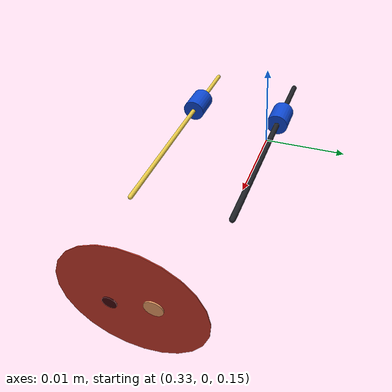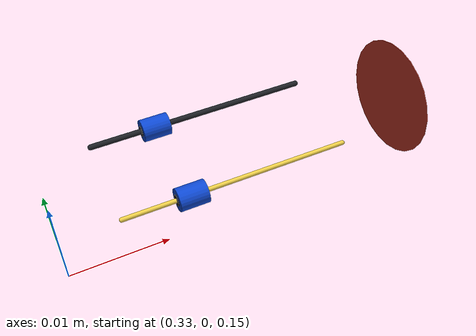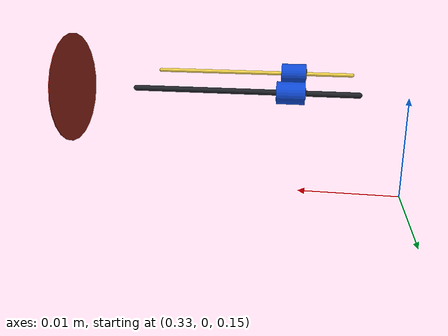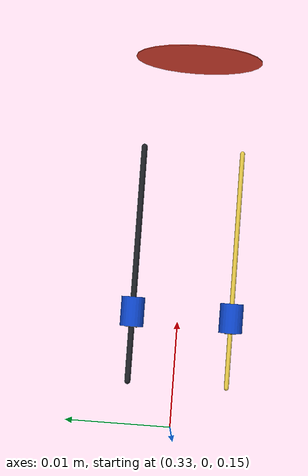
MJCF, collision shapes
<mujoco model="single_arm_ophthalmic_g95_anatomy_visual">
  <compiler angle="radian" coordinate="local"/>
  <option timestep="0.002" gravity="0 0 0" integrator="implicitfast"/>

  <visual>
    <global offwidth="960" offheight="720"/>
    <quality shadowsize="4096"/>
    <map znear="0.002" zfar="1.0"/>
    <headlight ambient="0.10 0.10 0.10" diffuse="0.20 0.20 0.20" specular="0.05 0.05 0.05"/>
  </visual>

  <asset>
    <mesh name="sclera_shell_mesh" file="assets/g95_eye/sclera_shell.obj"/>
    <mesh name="posterior_retina_mesh" file="assets/g95_eye/posterior_retina.obj"/>
    <mesh name="retinal_vessels_mesh" file="assets/g95_eye/retinal_vessels.obj"/>
    <mesh name="iris_annulus_mesh" file="assets/g95_eye/iris_annulus.obj"/>
    <material name="sclera_translucent" rgba="0.94 0.91 0.84 0.82"/>
    <material name="cornea_transparent" rgba="0.60 0.90 1.00 0.07"/>
    <material name="lens_transparent" rgba="0.90 0.96 0.83 0.035"/>
    <material name="iris_green" rgba="0.08 0.34 0.27 1"/>
    <material name="retina_red" rgba="0.78 0.22 0.16 1" emission="0.35"/>
    <material name="vessel_red" rgba="0.36 0.004 0.008 1" emission="0.45"/>
    <material name="optic_disc" rgba="0.93 0.62 0.40 1" emission="0.25"/>
    <material name="macula" rgba="0.25 0.025 0.035 1" emission="0.30"/>
    <material name="trocar_blue" rgba="0.05 0.28 0.82 1"/>
    <material name="metal" rgba="0.72 0.75 0.77 1"/>
    <material name="needle" rgba="0.12 0.13 0.15 1"/>
    <material name="fiber" rgba="0.92 0.80 0.28 1"/>
  </asset>

  <worldbody>
    <light name="room_key" pos="0.27 -0.20 0.30" dir="0.4 0.3 -1" diffuse="0.45 0.45 0.43"/>
    <light name="room_fill" pos="0.28 0.16 0.22" dir="0.5 -0.4 -0.2" diffuse="0.20 0.22 0.24"/>

    <!-- Visual/anatomical scaffold only. The frozen G28-G94 contact scene remains unchanged. -->
    <body name="eye_anatomy" pos="0.352 0 0.160">
      <camera name="retina_inspection_view" mode="fixed" pos="-0.005 0 0" xyaxes="0 -1 0 0 0 1" fovy="48"/>
      <!-- Corneal/lens transparency is deferred to camera post-processing;
           stacked transparent geoms otherwise hide the posterior pole. -->
      <!-- Iris is composited in the final pupil-camera post-processing pass;
           MuJoCo convexifies holed meshes and would otherwise close the pupil. -->
      <geom name="posterior_retina_visual" type="mesh" mesh="posterior_retina_mesh" material="retina_red" contype="0" conaffinity="0"/>
      <geom name="retinal_vessels_visual" type="mesh" mesh="retinal_vessels_mesh" material="vessel_red" contype="0" conaffinity="0"/>
      <geom name="pupil_fundus_projection" type="cylinder" pos="0.01105 0 0" euler="0 1.57079632679 0" size="0.0055 0.000035" material="retina_red" contype="0" conaffinity="0"/>
      <geom name="optic_disc_visual" type="cylinder" pos="0.01118 0.00165 0.00035" euler="0 1.57079632679 0" size="0.00072 0.00005" material="optic_disc" contype="0" conaffinity="0"/>
      <geom name="macula_visual" type="cylinder" pos="0.01130 -0.00155 -0.00015" euler="0 1.57079632679 0" size="0.00055 0.000035" material="macula" contype="0" conaffinity="0"/>

      <!-- Frozen single-arm dimensions: 2.0 mm OD, 1.0 mm ID, 2.5 mm visible length. -->
      <body name="left_trocar_visual" pos="-0.0111 0.0042 0.0012">
        <geom name="left_trocar_outer" type="cylinder" euler="0 1.57079632679 0" size="0.0010 0.00125" material="trocar_blue" contype="0" conaffinity="0"/>
        <geom name="left_trocar_lumen" type="cylinder" pos="-0.00127 0 0" euler="0 1.57079632679 0" size="0.00050 0.00005" rgba="0.01 0.01 0.012 1" contype="0" conaffinity="0"/>
      </body>

      <!-- Right trocar/fiber are G99 planning visuals; their hardware profile is still pending measurement. -->
      <body name="right_trocar_planning_visual" pos="-0.0111 -0.0042 0.0012">
        <geom name="right_trocar_outer" type="cylinder" euler="0 1.57079632679 0" size="0.0010 0.00125" material="trocar_blue" contype="0" conaffinity="0"/>
        <geom name="right_trocar_lumen" type="cylinder" pos="-0.00127 0 0" euler="0 1.57079632679 0" size="0.00050 0.00005" rgba="0.01 0.01 0.012 1" contype="0" conaffinity="0"/>
      </body>

      <geom name="needle_visual" type="capsule" fromto="-0.0170 0.0042 0.0012 0.0030 0.0042 0.0012" size="0.000255" material="needle" contype="0" conaffinity="0"/>
      <geom name="fiber_planning_visual" type="capsule" fromto="-0.0170 -0.0042 0.0012 0.0030 -0.0042 0.0012" size="0.00020" material="fiber" contype="0" conaffinity="0"/>
      <light name="fiber_tip_light" pos="0.0030 -0.0042 0.0012" dir="0.96 0.24 -0.08" cutoff="72" exponent="5" diffuse="1.25 0.94 0.64" specular="0.45 0.35 0.20"/>
    </body>

    <!-- External observation through the pupil; this is not a third-trocar camera. -->
    <camera name="pupil_external_view" mode="fixed" pos="0.315 0 0.160" xyaxes="0 -1 0 0 0 1" fovy="25"/>
    <camera name="eye_overview" mode="fixed" pos="0.322 -0.030 0.185" xyaxes="0.55 -0.83 0 -0.35 -0.23 0.91" fovy="42"/>
  </worldbody>
</mujoco>
